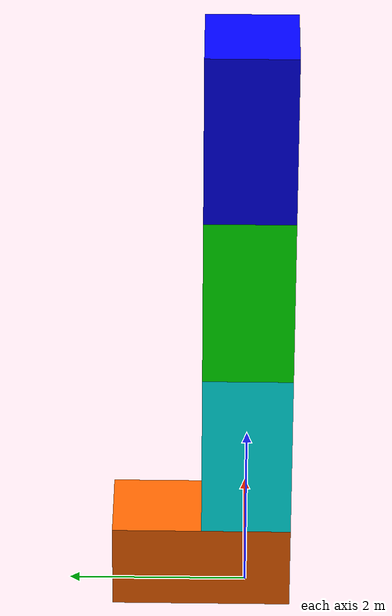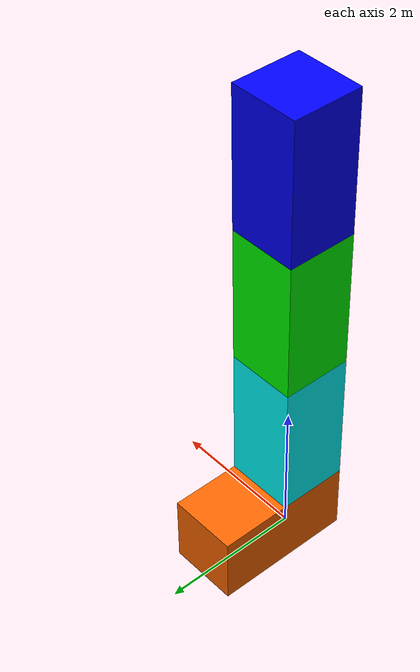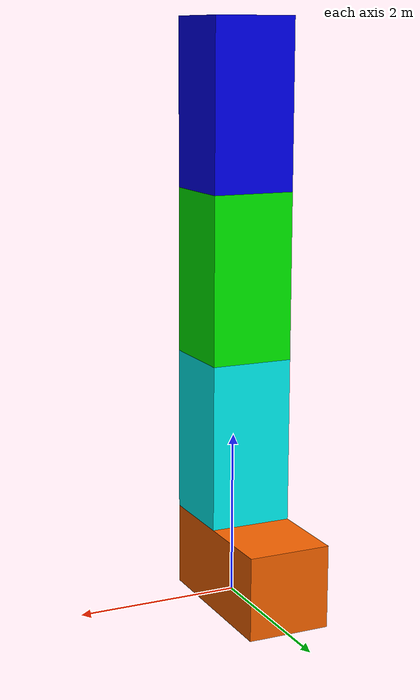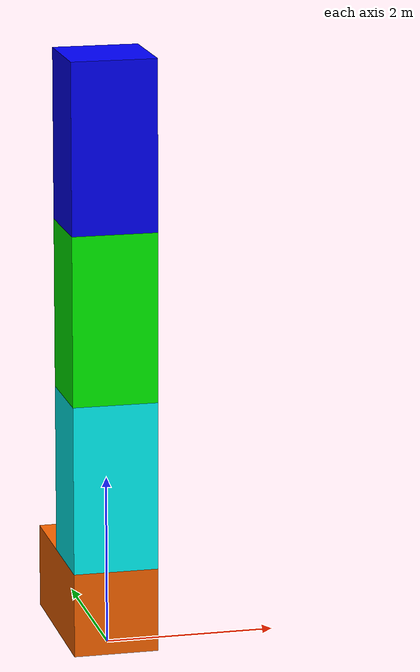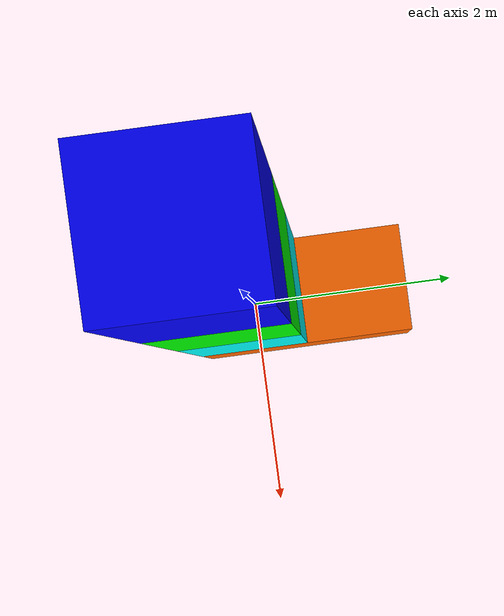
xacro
<?xml version = "0.0" ?>

<robot name = "arm">

    <link name="map"/>

    <joint name="base_joint" type="fixed">
        <parent link="map"/>
        <child link="base_link"/>
        <origin xyz="0.0 0.0 0.010" rpy="0 0 0"/>
    </joint>

    <link name="base_link">
        <inertial>
            <origin xyz="0 0.5 0.5" rpy="0 0 0"/>
            <mass value="1"/>
            <inertia ixx="100" ixy="0" ixz="0" iyy="100" iyz="0" izz="100" />
        </inertial>

        <visual>
            <origin xyz="0 0.5 0.5" rpy="0 0 0" />
            <geometry>
                <box size="1 2 1" />
            </geometry>
            <material name="yellow">
                <color rgba="1 0.4 0 1"/>
            </material>
        </visual>

        <collision>
            <origin xyz="0 0.5 0.5" rpy="0 0 0" />
            <geometry>
                <box size="1 2 1" />
            </geometry>
        </collision>
    </link>

    <link name="link0">
        <inertial>
            <origin xyz="0 0 1" rpy="0 0 0"/>
            <mass value="1"/>
            <inertia ixx="100" ixy="0" ixz="0" iyy="100" iyz="0" izz="100" />
        </inertial>

        <visual>
            <origin xyz="0 0 1" rpy="0 0 0" />
            <geometry>
                <box size="0 0 0" />
            </geometry>
            <material name="black">
                <color rgba="1.0 1.0 1.0 1.0"/>
            </material>
        </visual>

        <collision>
            <origin xyz="0 0 1" rpy="0 0 0" />
            <geometry>
                <box size="0 0 0" />
            </geometry>
        </collision>
    </link>

    <link name="link1">
        <inertial>
            <origin xyz="0 0 1" rpy="0 0 0"/>
            <mass value="1"/>
            <inertia ixx="100" ixy="0" ixz="0" iyy="100" iyz="0" izz="100" />
        </inertial>

        <visual>
            <origin xyz="0 0 1" rpy="0 0 0" />
            <geometry>
                <box size="1 1 2" />
            </geometry>
            <material name="Cyan">
                <color rgba="0 1.0 1.0 1.0"/>
            </material>
        </visual>

        <collision>
            <origin xyz="0 0 1" rpy="0 0 0" />
            <geometry>
                <box size="1 1 2" />
            </geometry>
        </collision>
    </link>
    <link name="link2">
        <inertial>
            <origin xyz="0 0 1" rpy="0 0 0"/>
            <mass value="1"/>
            <inertia ixx="100" ixy="0" ixz="0" iyy="100" iyz="0" izz="100" />
        </inertial>

        <visual>
            <origin xyz="0 0 1" rpy="0 0 0" />
            <geometry>
                <box size="1 1 2" />
            </geometry>
            <material name="green">
                <color rgba="0 1.0 0 1.0"/>
            </material>
        </visual>

        <collision>
            <origin xyz="0 0 1" rpy="0 0 0" />
            <geometry>
                <box size="1 1 2" />
            </geometry>
        </collision>
    </link>
    <link name="link3">
        <inertial>
            <origin xyz="0 0 1" rpy="0 0 0"/>
            <mass value="1"/>
            <inertia ixx="100" ixy="0" ixz="0" iyy="100" iyz="0" izz="100" />
        </inertial>

        <visual>
            <origin xyz="0 0 1" rpy="0 0 0" />
            <geometry>
                <box size="1 1 2" />
            </geometry>
            <material name="blue">
                <color rgba="0 0 1.0 1.0"/>
            </material>
        </visual>

        <collision>
            <origin xyz="0 0 1" rpy="0 0 0" />
            <geometry>
                <box size="1 1 2" />
            </geometry>
        </collision>
    </link>

    <joint name="joint0" type="revolute">
        <limit effort="30" velocity="1.0" lower="-1.57" upper="1.57" />
        <parent link="base_link"/>
        <child link="link0"/>
        <origin xyz="0 0 1" rpy="0 0 0" />
        <axis xyz="0 0 1" />
    </joint>

    <joint name="joint1" type="revolute">
        <limit effort="30" velocity="1.0" lower="-1.0" upper="1.0" />
        <parent link="link0"/>
        <child link="link1"/>
        <origin xyz="0 0 0" rpy="0 0 0" />
    </joint>
    <joint name="joint2" type="revolute">
        <limit effort="30" velocity="1.0" lower="-1.57" upper="1.57" />
        <parent link="link1"/>
        <child link="link2"/>
        <origin xyz="0 0 2" rpy="0 0 0" />
    </joint>
    <joint name="joint3" type="revolute">
        <limit effort="30" velocity="1.0" lower="0" upper="2" />
        <parent link="link2"/>
        <child link="link3"/>
        <origin xyz="0 0 2" rpy="0 0 0" />
    </joint>
</robot>
<!--joint0: -1.57~+1.57 -->
<!--joint1: -1.0~+1.0-->
<!--joint2: -1.57~+1.57-->
<!--joint3: 0~+120°-->
